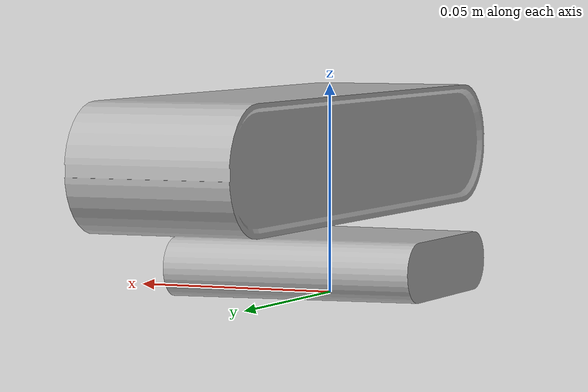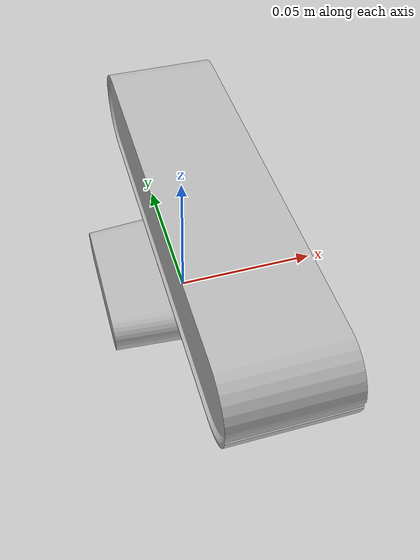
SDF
<?xml version="1.0" ?>
<sdf version="1.6">
  <model name="orbbec_astra_camera">
    <pose>0 0 0.024 0 0 0</pose>
    <link name="link">
      <inertial>
        <mass>0.22</mass>
        <inertia>
          <ixx>0.000513887</ixx>
          <ixy>0</ixy>
          <ixz>0</ixz>
          <iyy>0.00008685</iyy>
          <iyz>0</iyz>
          <izz>0.00050009</izz>
        </inertia>
      </inertial>
      <collision name="collision">
        <geometry>
          <box>
            <size>0.06 0.17 0.048</size>
          </box>
        </geometry>
        <surface>
          <contact>
            <ode>
              <max_vel>0.1</max_vel>
              <min_depth>0.001</min_depth>
            </ode>
          </contact>
          <friction>
            <ode>
              <mu>0.4</mu>
              <mu2>0.4</mu2>
            </ode>
          </friction>
        </surface>
      </collision>
      <visual name="visual">
        <geometry>
          <mesh>
            <uri>model://orbbec_astra_camera/meshes/orbbec_astra_camera.dae</uri>
          </mesh>
        </geometry>
      </visual>
      <sensor name="camera" type="depth">
        <pose>0.035 0.015 0.008 0 0 0</pose>
        <update_rate>30</update_rate>
        <camera>
          <horizontal_fov>1.0472</horizontal_fov>
          <image>
            <width>640</width>
            <height>480</height>
            <format>R8G8B8</format>
          </image>
          <clip>
            <near>0.6</near>
            <far>8</far>
          </clip>
        </camera>
      </sensor>
    </link>
  </model>
</sdf>
